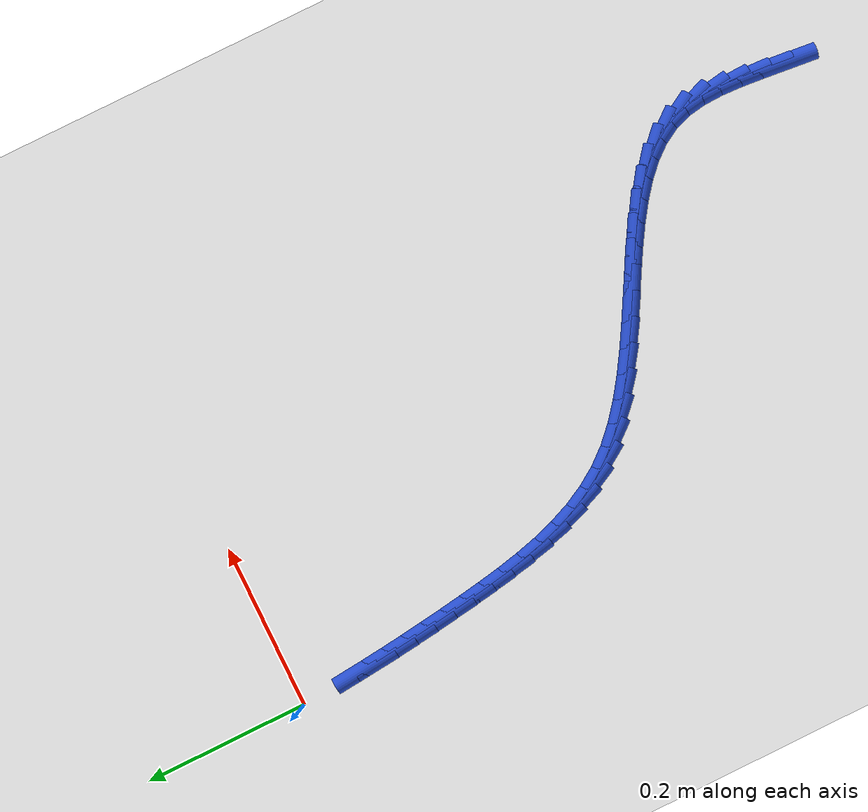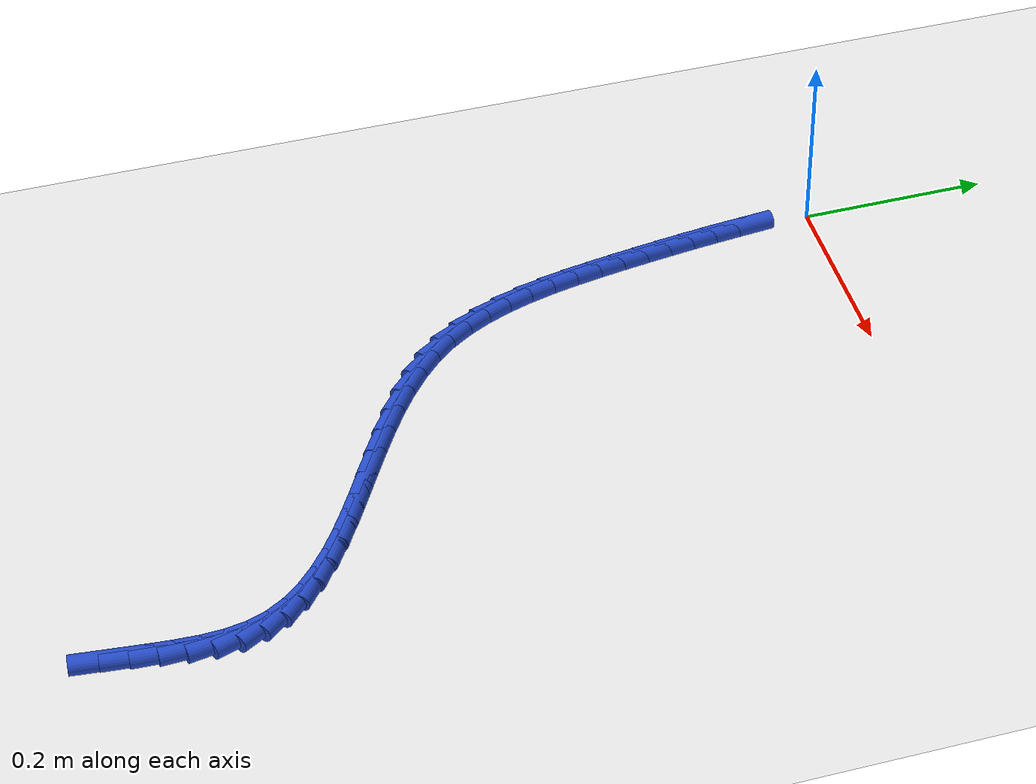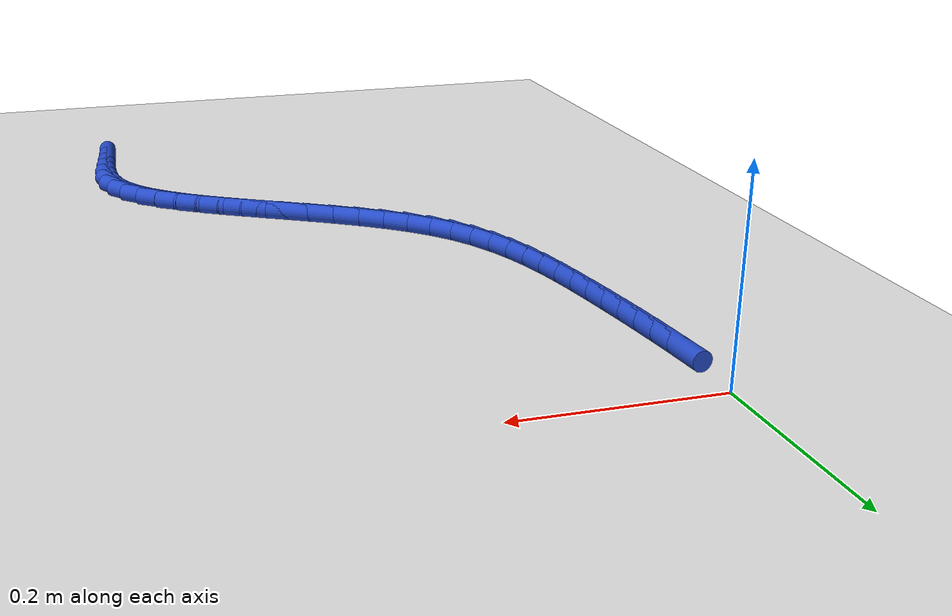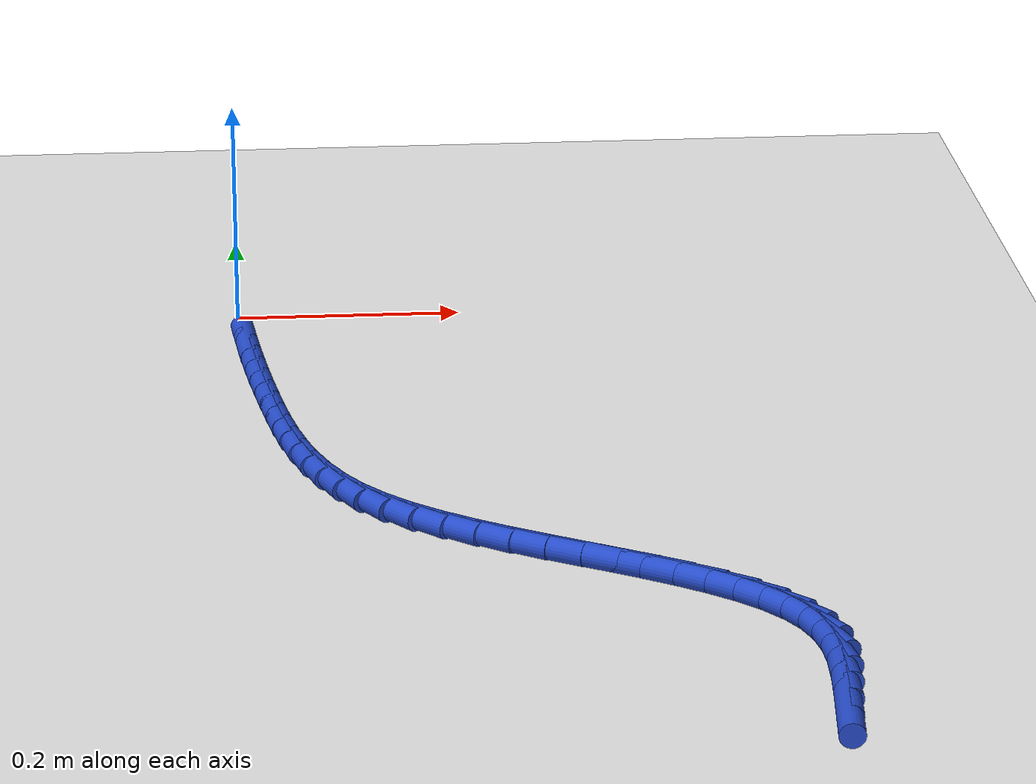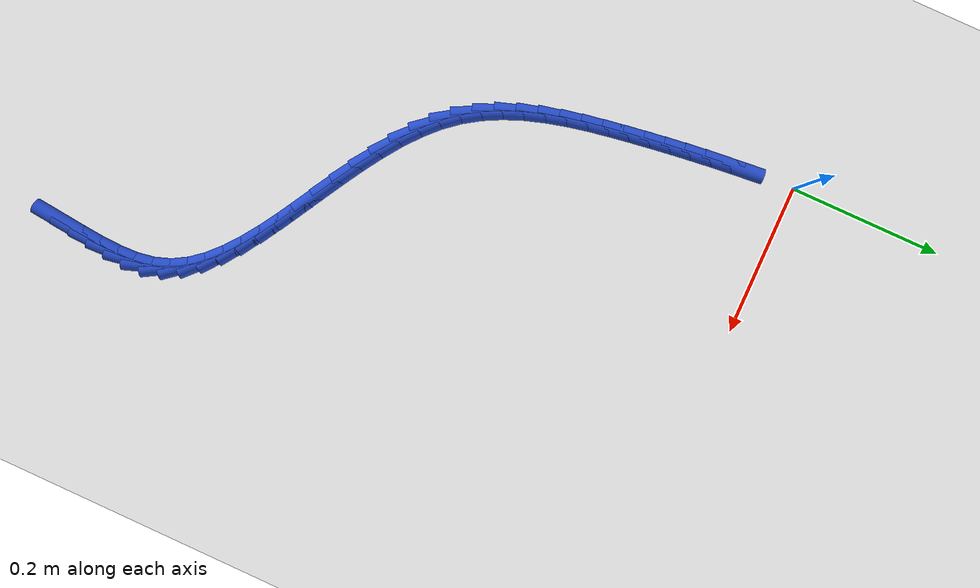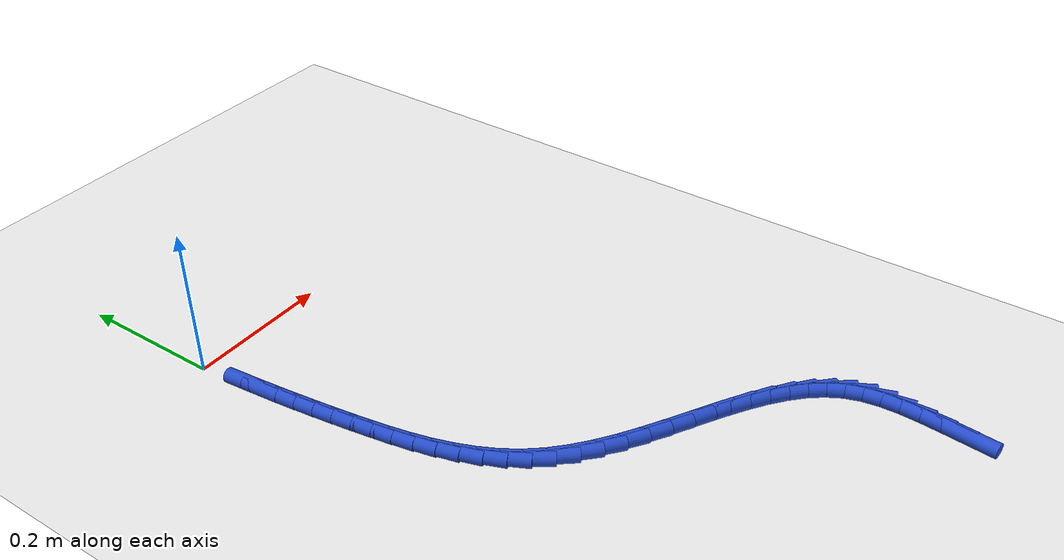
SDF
<sdf version="1.6">
 <world name="default">
  <model name="ground_plane">
   <static>1</static>
   <link name="link">
    <collision name="collision">
     <geometry><plane><normal>0 0 1</normal><size>100 100</size></plane></geometry>
     <surface><friction><ode><mu>100</mu><mu2>50</mu2></ode></friction></surface>
    </collision>
    <visual name="visual">
     <cast_shadows>0</cast_shadows>
     <geometry><plane><normal>0 0 1</normal><size>100 100</size></plane></geometry>
     <material>
      <script><uri>file://media/materials/scripts/gazebo.material</uri><name>Gazebo/WhiteGlow</name></script>
     </material>
    </visual>
   </link>
  </model>
  <model name="line">
   <link name="link_243">
    <pose>0.4252943432944792 -0.8311880748463546 0.01 0 1.57 1.4678249709001787</pose>
    <collision name="collision">
     <geometry><cylinder><radius>0.01</radius><length>0.08</length></cylinder></geometry>
    </collision>
    <visual name="visual">
     <material>
      <script><name>Gazebo/Blue</name><uri>file://media/materials/scripts/gazebo.material</uri></script>
     </material>
     <geometry><cylinder><radius>0.01</radius><length>0.08</length></cylinder></geometry>
    </visual>
   </link>
   <link name="link_244">
    <pose>0.42821565126689004 -0.8029183131476879 0.01 0 1.57 1.4816774827381325</pose>
    <collision name="collision">
     <geometry><cylinder><radius>0.01</radius><length>0.08</length></cylinder></geometry>
    </collision>
    <visual name="visual">
     <material>
      <script><name>Gazebo/Blue</name><uri>file://media/materials/scripts/gazebo.material</uri></script>
     </material>
     <geometry><cylinder><radius>0.01</radius><length>0.08</length></cylinder></geometry>
    </visual>
   </link>
   <link name="link_245">
    <pose>0.4306520931147036 -0.7756514848438988 0.01 0 1.57 1.5273272176309631</pose>
    <collision name="collision">
     <geometry><cylinder><radius>0.01</radius><length>0.08</length></cylinder></geometry>
    </collision>
    <visual name="visual">
     <material>
      <script><name>Gazebo/Blue</name><uri>file://media/materials/scripts/gazebo.material</uri></script>
     </material>
     <geometry><cylinder><radius>0.01</radius><length>0.08</length></cylinder></geometry>
    </visual>
   </link>
   <link name="link_246">
    <pose>0.4317869188132164 -0.749561444003077 0.01 0 1.57 -1.5310612152752767</pose>
    <collision name="collision">
     <geometry><cylinder><radius>0.01</radius><length>0.08</length></cylinder></geometry>
    </collision>
    <visual name="visual">
     <material>
      <script><name>Gazebo/Blue</name><uri>file://media/materials/scripts/gazebo.material</uri></script>
     </material>
     <geometry><cylinder><radius>0.01</radius><length>0.08</length></cylinder></geometry>
    </visual>
   </link>
   <link name="link_247">
    <pose>0.4308033783377251 -0.7248220446933122 0.01 0 1.57 -1.4035734932934418</pose>
    <collision name="collision">
     <geometry><cylinder><radius>0.01</radius><length>0.08</length></cylinder></geometry>
    </collision>
    <visual name="visual">
     <material>
      <script><name>Gazebo/Blue</name><uri>file://media/materials/scripts/gazebo.material</uri></script>
     </material>
     <geometry><cylinder><radius>0.01</radius><length>0.08</length></cylinder></geometry>
    </visual>
   </link>
   <link name="link_248">
    <pose>0.4268847216635263 -0.701607140982694 0.01 0 1.57 -1.2294197460334328</pose>
    <collision name="collision">
     <geometry><cylinder><radius>0.01</radius><length>0.08</length></cylinder></geometry>
    </collision>
    <visual name="visual">
     <material>
      <script><name>Gazebo/Blue</name><uri>file://media/materials/scripts/gazebo.material</uri></script>
     </material>
     <geometry><cylinder><radius>0.01</radius><length>0.08</length></cylinder></geometry>
    </visual>
   </link>
   <link name="link_249">
    <pose>0.4192375349732935 -0.6800831387174722 0.01 0 1.57 -1.0431775993724006</pose>
    <collision name="collision">
     <geometry><cylinder><radius>0.01</radius><length>0.08</length></cylinder></geometry>
    </collision>
    <visual name="visual">
     <material>
      <script><name>Gazebo/Blue</name><uri>file://media/materials/scripts/gazebo.material</uri></script>
     </material>
     <geometry><cylinder><radius>0.01</radius><length>0.08</length></cylinder></geometry>
    </visual>
   </link>
   <link name="link_250">
    <pose>0.4076661348147594 -0.6602256660272121 0.01 0 1.57 -0.8854361331559061</pose>
    <collision name="collision">
     <geometry><cylinder><radius>0.01</radius><length>0.08</length></cylinder></geometry>
    </collision>
    <visual name="visual">
     <material>
      <script><name>Gazebo/Blue</name><uri>file://media/materials/scripts/gazebo.material</uri></script>
     </material>
     <geometry><cylinder><radius>0.01</radius><length>0.08</length></cylinder></geometry>
    </visual>
   </link>
   <link name="link_251">
    <pose>0.39260855792489485 -0.6418080864456229 0.01 0 1.57 -0.7610016899721294</pose>
    <collision name="collision">
     <geometry><cylinder><radius>0.01</radius><length>0.08</length></cylinder></geometry>
    </collision>
    <visual name="visual">
     <material>
      <script><name>Gazebo/Blue</name><uri>file://media/materials/scripts/gazebo.material</uri></script>
     </material>
     <geometry><cylinder><radius>0.01</radius><length>0.08</length></cylinder></geometry>
    </visual>
   </link>
   <link name="link_252">
    <pose>0.3745333829272983 -0.624594015446528 0.01 0 1.57 -0.6672337813648783</pose>
    <collision name="collision">
     <geometry><cylinder><radius>0.01</radius><length>0.08</length></cylinder></geometry>
    </collision>
    <visual name="visual">
     <material>
      <script><name>Gazebo/Blue</name><uri>file://media/materials/scripts/gazebo.material</uri></script>
     </material>
     <geometry><cylinder><radius>0.01</radius><length>0.08</length></cylinder></geometry>
    </visual>
   </link>
   <link name="link_253">
    <pose>0.3539091884455701 -0.6083470685037513 0.01 0 1.57 -0.5994937148096907</pose>
    <collision name="collision">
     <geometry><cylinder><radius>0.01</radius><length>0.08</length></cylinder></geometry>
    </collision>
    <visual name="visual">
     <material>
      <script><name>Gazebo/Blue</name><uri>file://media/materials/scripts/gazebo.material</uri></script>
     </material>
     <geometry><cylinder><radius>0.01</radius><length>0.08</length></cylinder></geometry>
    </visual>
   </link>
   <link name="link_254">
    <pose>0.331204553103309 -0.592830861091116 0.01 0 1.57 -0.5533788385919168</pose>
    <collision name="collision">
     <geometry><cylinder><radius>0.01</radius><length>0.08</length></cylinder></geometry>
    </collision>
    <visual name="visual">
     <material>
      <script><name>Gazebo/Blue</name><uri>file://media/materials/scripts/gazebo.material</uri></script>
     </material>
     <geometry><cylinder><radius>0.01</radius><length>0.08</length></cylinder></geometry>
    </visual>
   </link>
   <link name="link_255">
    <pose>0.30688805552411363 -0.5778090086824453 0.01 0 1.57 -0.5255017556800979</pose>
    <collision name="collision">
     <geometry><cylinder><radius>0.01</radius><length>0.08</length></cylinder></geometry>
    </collision>
    <visual name="visual">
     <material>
      <script><name>Gazebo/Blue</name><uri>file://media/materials/scripts/gazebo.material</uri></script>
     </material>
     <geometry><cylinder><radius>0.01</radius><length>0.08</length></cylinder></geometry>
    </visual>
   </link>
   <link name="link_256">
    <pose>0.28142827433158357 -0.5630451267515627 0.01 0 1.57 -0.5135991924383123</pose>
    <collision name="collision">
     <geometry><cylinder><radius>0.01</radius><length>0.08</length></cylinder></geometry>
    </collision>
    <visual name="visual">
     <material>
      <script><name>Gazebo/Blue</name><uri>file://media/materials/scripts/gazebo.material</uri></script>
     </material>
     <geometry><cylinder><radius>0.01</radius><length>0.08</length></cylinder></geometry>
    </visual>
   </link>
   <link name="link_257">
    <pose>0.2552937881493178 -0.5483028307722918 0.01 0 1.57 -0.5164321408061764</pose>
    <collision name="collision">
     <geometry><cylinder><radius>0.01</radius><length>0.08</length></cylinder></geometry>
    </collision>
    <visual name="visual">
     <material>
      <script><name>Gazebo/Blue</name><uri>file://media/materials/scripts/gazebo.material</uri></script>
     </material>
     <geometry><cylinder><radius>0.01</radius><length>0.08</length></cylinder></geometry>
    </visual>
   </link>
   <link name="link_258">
    <pose>0.2289531756009153 -0.5333457362184557 0.01 0 1.57 -0.533664297336443</pose>
    <collision name="collision">
     <geometry><cylinder><radius>0.01</radius><length>0.08</length></cylinder></geometry>
    </collision>
    <visual name="visual">
     <material>
      <script><name>Gazebo/Blue</name><uri>file://media/materials/scripts/gazebo.material</uri></script>
     </material>
     <geometry><cylinder><radius>0.01</radius><length>0.08</length></cylinder></geometry>
    </visual>
   </link>
   <link name="link_259">
    <pose>0.20287501530997523 -0.5179374585638782 0.01 0 1.57 -0.5657697848682363</pose>
    <collision name="collision">
     <geometry><cylinder><radius>0.01</radius><length>0.08</length></cylinder></geometry>
    </collision>
    <visual name="visual">
     <material>
      <script><name>Gazebo/Blue</name><uri>file://media/materials/scripts/gazebo.material</uri></script>
     </material>
     <geometry><cylinder><radius>0.01</radius><length>0.08</length></cylinder></geometry>
    </visual>
   </link>
   <link name="link_260">
    <pose>0.17752788590009688 -0.5018416132823825 0.01 0 1.57 -0.6139574852407323</pose>
    <collision name="collision">
     <geometry><cylinder><radius>0.01</radius><length>0.08</length></cylinder></geometry>
    </collision>
    <visual name="visual">
     <material>
      <script><name>Gazebo/Blue</name><uri>file://media/materials/scripts/gazebo.material</uri></script>
     </material>
     <geometry><cylinder><radius>0.01</radius><length>0.08</length></cylinder></geometry>
    </visual>
   </link>
   <link name="link_261">
    <pose>0.15338036599487842 -0.4848218158477915 0.01 0 1.57 -0.6800528972296557</pose>
    <collision name="collision">
     <geometry><cylinder><radius>0.01</radius><length>0.08</length></cylinder></geometry>
    </collision>
    <visual name="visual">
     <material>
      <script><name>Gazebo/Blue</name><uri>file://media/materials/scripts/gazebo.material</uri></script>
     </material>
     <geometry><cylinder><radius>0.01</radius><length>0.08</length></cylinder></geometry>
    </visual>
   </link>
   <link name="link_262">
    <pose>0.13090103421792054 -0.46664168173392967 0.01 0 1.57 -0.7662191319417057</pose>
    <collision name="collision">
     <geometry><cylinder><radius>0.01</radius><length>0.08</length></cylinder></geometry>
    </collision>
    <visual name="visual">
     <material>
      <script><name>Gazebo/Blue</name><uri>file://media/materials/scripts/gazebo.material</uri></script>
     </material>
     <geometry><cylinder><radius>0.01</radius><length>0.08</length></cylinder></geometry>
    </visual>
   </link>
   <link name="link_263">
    <pose>0.11055846919282154 -0.44706482641461986 0.01 0 1.57 -0.8740500010770208</pose>
    <collision name="collision">
     <geometry><cylinder><radius>0.01</radius><length>0.08</length></cylinder></geometry>
    </collision>
    <visual name="visual">
     <material>
      <script><name>Gazebo/Blue</name><uri>file://media/materials/scripts/gazebo.material</uri></script>
     </material>
     <geometry><cylinder><radius>0.01</radius><length>0.08</length></cylinder></geometry>
    </visual>
   </link>
   <link name="link_264">
    <pose>0.09281468615013684 -0.42585901605581716 0.01 0 1.57 -0.990567766284164</pose>
    <collision name="collision">
     <geometry><cylinder><radius>0.01</radius><length>0.08</length></cylinder></geometry>
    </collision>
    <visual name="visual">
     <material>
      <script><name>Gazebo/Blue</name><uri>file://media/materials/scripts/gazebo.material</uri></script>
     </material>
     <geometry><cylinder><radius>0.01</radius><length>0.08</length></cylinder></geometry>
    </visual>
   </link>
   <link name="link_265">
    <pose>0.07782253825478176 -0.4029875310254547 0.01 0 1.57 -1.0948923200302116</pose>
    <collision name="collision">
     <geometry><cylinder><radius>0.01</radius><length>0.08</length></cylinder></geometry>
    </collision>
    <visual name="visual">
     <material>
      <script><name>Gazebo/Blue</name><uri>file://media/materials/scripts/gazebo.material</uri></script>
     </material>
     <geometry><cylinder><radius>0.01</radius><length>0.08</length></cylinder></geometry>
    </visual>
   </link>
   <link name="link_266">
    <pose>0.06529888560475296 -0.3786893738644631 0.01 0 1.57 -1.184037641533103</pose>
    <collision name="collision">
     <geometry><cylinder><radius>0.01</radius><length>0.08</length></cylinder></geometry>
    </collision>
    <visual name="visual">
     <material>
      <script><name>Gazebo/Blue</name><uri>file://media/materials/scripts/gazebo.material</uri></script>
     </material>
     <geometry><cylinder><radius>0.01</radius><length>0.08</length></cylinder></geometry>
    </visual>
   </link>
   <link name="link_267">
    <pose>0.05492771528836001 -0.3532243360169725 0.01 0 1.57 -1.2578078405065773</pose>
    <collision name="collision">
     <geometry><cylinder><radius>0.01</radius><length>0.08</length></cylinder></geometry>
    </collision>
    <visual name="visual">
     <material>
      <script><name>Gazebo/Blue</name><uri>file://media/materials/scripts/gazebo.material</uri></script>
     </material>
     <geometry><cylinder><radius>0.01</radius><length>0.08</length></cylinder></geometry>
    </visual>
   </link>
   <link name="link_268">
    <pose>0.04639301439391254 -0.3268522089271131 0.01 0 1.57 -1.316802918523914</pose>
    <collision name="collision">
     <geometry><cylinder><radius>0.01</radius><length>0.08</length></cylinder></geometry>
    </collision>
    <visual name="visual">
     <material>
      <script><name>Gazebo/Blue</name><uri>file://media/materials/scripts/gazebo.material</uri></script>
     </material>
     <geometry><cylinder><radius>0.01</radius><length>0.08</length></cylinder></geometry>
    </visual>
   </link>
   <link name="link_269">
    <pose>0.03937877000972016 -0.2998327840390152 0.01 0 1.57 -1.3619057436559072</pose>
    <collision name="collision">
     <geometry><cylinder><radius>0.01</radius><length>0.08</length></cylinder></geometry>
    </collision>
    <visual name="visual">
     <material>
      <script><name>Gazebo/Blue</name><uri>file://media/materials/scripts/gazebo.material</uri></script>
     </material>
     <geometry><cylinder><radius>0.01</radius><length>0.08</length></cylinder></geometry>
    </visual>
   </link>
   <link name="link_270">
    <pose>0.03356896922409233 -0.2724258527968081 0.01 0 1.57 -1.3939301861224354</pose>
    <collision name="collision">
     <geometry><cylinder><radius>0.01</radius><length>0.08</length></cylinder></geometry>
    </collision>
    <visual name="visual">
     <material>
      <script><name>Gazebo/Blue</name><uri>file://media/materials/scripts/gazebo.material</uri></script>
     </material>
     <geometry><cylinder><radius>0.01</radius><length>0.08</length></cylinder></geometry>
    </visual>
   </link>
   <link name="link_271">
    <pose>0.02864759912533899 -0.2448912066446236 0.01 0 1.57 -1.4134165538535017</pose>
    <collision name="collision">
     <geometry><cylinder><radius>0.01</radius><length>0.08</length></cylinder></geometry>
    </collision>
    <visual name="visual">
     <material>
      <script><name>Gazebo/Blue</name><uri>file://media/materials/scripts/gazebo.material</uri></script>
     </material>
     <geometry><cylinder><radius>0.01</radius><length>0.08</length></cylinder></geometry>
    </visual>
   </link>
   <link name="link_272">
    <pose>0.024298965031856815 -0.21748824566530595 0.01 0 1.57 -1.42401747512534</pose>
    <collision name="collision">
     <geometry><cylinder><radius>0.01</radius><length>0.08</length></cylinder></geometry>
    </collision>
    <visual name="visual">
     <material>
      <script><name>Gazebo/Blue</name><uri>file://media/materials/scripts/gazebo.material</uri></script>
     </material>
     <geometry><cylinder><radius>0.01</radius><length>0.08</length></cylinder></geometry>
    </visual>
   </link>
   <link name="link_273">
    <pose>0.02029038067056186 -0.19037428569902945 0.01 0 1.57 -1.4338536420796475</pose>
    <collision name="collision">
     <geometry><cylinder><radius>0.01</radius><length>0.08</length></cylinder></geometry>
    </collision>
    <visual name="visual">
     <material>
      <script><name>Gazebo/Blue</name><uri>file://media/materials/scripts/gazebo.material</uri></script>
     </material>
     <geometry><cylinder><radius>0.01</radius><length>0.08</length></cylinder></geometry>
    </visual>
   </link>
   <link name="link_274">
    <pose>0.016582649437273084 -0.16346868782130253 0.01 0 1.57 -1.4439781158091423</pose>
    <collision name="collision">
     <geometry><cylinder><radius>0.01</radius><length>0.08</length></cylinder></geometry>
    </collision>
    <visual name="visual">
     <material>
      <script><name>Gazebo/Blue</name><uri>file://media/materials/scripts/gazebo.material</uri></script>
     </material>
     <geometry><cylinder><radius>0.01</radius><length>0.08</length></cylinder></geometry>
    </visual>
   </link>
   <link name="link_275">
    <pose>0.013164089586889235 -0.1366569751675809 0.01 0 1.57 -1.4542637001020755</pose>
    <collision name="collision">
     <geometry><cylinder><radius>0.01</radius><length>0.08</length></cylinder></geometry>
    </collision>
    <visual name="visual">
     <material>
      <script><name>Gazebo/Blue</name><uri>file://media/materials/scripts/gazebo.material</uri></script>
     </material>
     <geometry><cylinder><radius>0.01</radius><length>0.08</length></cylinder></geometry>
    </visual>
   </link>
   <link name="link_276">
    <pose>0.010023019374309062 -0.10982467087332026 0.01 0 1.57 -1.46457756796905</pose>
    <collision name="collision">
     <geometry><cylinder><radius>0.01</radius><length>0.08</length></cylinder></geometry>
    </collision>
    <visual name="visual">
     <material>
      <script><name>Gazebo/Blue</name><uri>file://media/materials/scripts/gazebo.material</uri></script>
     </material>
     <geometry><cylinder><radius>0.01</radius><length>0.08</length></cylinder></geometry>
    </visual>
   </link>
   <link name="link_277">
    <pose>0.007147757054431304 -0.08285729807397621 0.01 0 1.57 -1.4747870170550634</pose>
    <collision name="collision">
     <geometry><cylinder><radius>0.01</radius><length>0.08</length></cylinder></geometry>
    </collision>
    <visual name="visual">
     <material>
      <script><name>Gazebo/Blue</name><uri>file://media/materials/scripts/gazebo.material</uri></script>
     </material>
     <geometry><cylinder><radius>0.01</radius><length>0.08</length></cylinder></geometry>
    </visual>
   </link>
  </model>
 </world>
</sdf>
